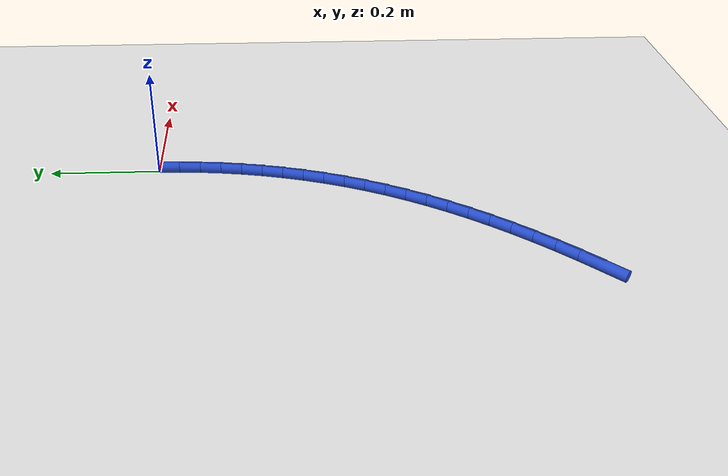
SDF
<sdf version="1.6">
 <world name="default">
  <model name="ground_plane">
   <static>1</static>
   <link name="link">
    <collision name="collision">
     <geometry><plane><normal>0 0 1</normal><size>100 100</size></plane></geometry>
     <surface><friction><ode><mu>100</mu><mu2>50</mu2></ode></friction></surface>
    </collision>
    <visual name="visual">
     <cast_shadows>0</cast_shadows>
     <geometry><plane><normal>0 0 1</normal><size>100 100</size></plane></geometry>
     <material>
      <script><uri>file://media/materials/scripts/gazebo.material</uri><name>Gazebo/WhiteGlow</name></script>
     </material>
    </visual>
   </link>
  </model>
  <model name="line">
   <link name="link_149">
    <pose>-0.3109703209604994 -0.728481050519087 0.01 0 1.57 0.8182340703780865</pose>
    <collision name="collision">
     <geometry><cylinder><radius>0.01</radius><length>0.08</length></cylinder></geometry>
    </collision>
    <visual name="visual">
     <material>
      <script><name>Gazebo/Blue</name><uri>file://media/materials/scripts/gazebo.material</uri></script>
     </material>
     <geometry><cylinder><radius>0.01</radius><length>0.08</length></cylinder></geometry>
    </visual>
   </link>
   <link name="link_150">
    <pose>-0.28398249145700494 -0.6996600278416573 0.01 0 1.57 0.8477722701278031</pose>
    <collision name="collision">
     <geometry><cylinder><radius>0.01</radius><length>0.08</length></cylinder></geometry>
    </collision>
    <visual name="visual">
     <material>
      <script><name>Gazebo/Blue</name><uri>file://media/materials/scripts/gazebo.material</uri></script>
     </material>
     <geometry><cylinder><radius>0.01</radius><length>0.08</length></cylinder></geometry>
    </visual>
   </link>
   <link name="link_151">
    <pose>-0.25794233244260184 -0.6701505067670331 0.01 0 1.57 0.8769073071161102</pose>
    <collision name="collision">
     <geometry><cylinder><radius>0.01</radius><length>0.08</length></cylinder></geometry>
    </collision>
    <visual name="visual">
     <material>
      <script><name>Gazebo/Blue</name><uri>file://media/materials/scripts/gazebo.material</uri></script>
     </material>
     <geometry><cylinder><radius>0.01</radius><length>0.08</length></cylinder></geometry>
    </visual>
   </link>
   <link name="link_152">
    <pose>-0.23288833768777886 -0.6400337435514548 0.01 0 1.57 0.9071541386721638</pose>
    <collision name="collision">
     <geometry><cylinder><radius>0.01</radius><length>0.08</length></cylinder></geometry>
    </collision>
    <visual name="visual">
     <material>
      <script><name>Gazebo/Blue</name><uri>file://media/materials/scripts/gazebo.material</uri></script>
     </material>
     <geometry><cylinder><radius>0.01</radius><length>0.08</length></cylinder></geometry>
    </visual>
   </link>
   <link name="link_153">
    <pose>-0.20886849549883132 -0.6093161634620818 0.01 0 1.57 0.938787729878918</pose>
    <collision name="collision">
     <geometry><cylinder><radius>0.01</radius><length>0.08</length></cylinder></geometry>
    </collision>
    <visual name="visual">
     <material>
      <script><name>Gazebo/Blue</name><uri>file://media/materials/scripts/gazebo.material</uri></script>
     </material>
     <geometry><cylinder><radius>0.01</radius><length>0.08</length></cylinder></geometry>
    </visual>
   </link>
   <link name="link_154">
    <pose>-0.18593245019456547 -0.5779911399374742 0.01 0 1.57 0.9718230118073256</pose>
    <collision name="collision">
     <geometry><cylinder><radius>0.01</radius><length>0.08</length></cylinder></geometry>
    </collision>
    <visual name="visual">
     <material>
      <script><name>Gazebo/Blue</name><uri>file://media/materials/scripts/gazebo.material</uri></script>
     </material>
     <geometry><cylinder><radius>0.01</radius><length>0.08</length></cylinder></geometry>
    </visual>
   </link>
   <link name="link_155">
    <pose>-0.1641298460937861 -0.5460520464161904 0.01 0 1.57 1.006263799603996</pose>
    <collision name="collision">
     <geometry><cylinder><radius>0.01</radius><length>0.08</length></cylinder></geometry>
    </collision>
    <visual name="visual">
     <material>
      <script><name>Gazebo/Blue</name><uri>file://media/materials/scripts/gazebo.material</uri></script>
     </material>
     <geometry><cylinder><radius>0.01</radius><length>0.08</length></cylinder></geometry>
    </visual>
   </link>
   <link name="link_156">
    <pose>-0.14351032751529857 -0.5134922563367891 0.01 0 1.57 1.0421007141684497</pose>
    <collision name="collision">
     <geometry><cylinder><radius>0.01</radius><length>0.08</length></cylinder></geometry>
    </collision>
    <visual name="visual">
     <material>
      <script><name>Gazebo/Blue</name><uri>file://media/materials/scripts/gazebo.material</uri></script>
     </material>
     <geometry><cylinder><radius>0.01</radius><length>0.08</length></cylinder></geometry>
    </visual>
   </link>
   <link name="link_157">
    <pose>-0.12412353877790817 -0.48030514313782946 0.01 0 1.57 1.0793091179729382</pose>
    <collision name="collision">
     <geometry><cylinder><radius>0.01</radius><length>0.08</length></cylinder></geometry>
    </collision>
    <visual name="visual">
     <material>
      <script><name>Gazebo/Blue</name><uri>file://media/materials/scripts/gazebo.material</uri></script>
     </material>
     <geometry><cylinder><radius>0.01</radius><length>0.08</length></cylinder></geometry>
    </visual>
   </link>
   <link name="link_158">
    <pose>-0.1060191242004199 -0.44648408025786956 0.01 0 1.57 1.1178471801344174</pose>
    <collision name="collision">
     <geometry><cylinder><radius>0.01</radius><length>0.08</length></cylinder></geometry>
    </collision>
    <visual name="visual">
     <material>
      <script><name>Gazebo/Blue</name><uri>file://media/materials/scripts/gazebo.material</uri></script>
     </material>
     <geometry><cylinder><radius>0.01</radius><length>0.08</length></cylinder></geometry>
    </visual>
   </link>
   <link name="link_159">
    <pose>-0.08924672810163979 -0.41202244113546976 0.01 0 1.57 1.1576542102651584</pose>
    <collision name="collision">
     <geometry><cylinder><radius>0.01</radius><length>0.08</length></cylinder></geometry>
    </collision>
    <visual name="visual">
     <material>
      <script><name>Gazebo/Blue</name><uri>file://media/materials/scripts/gazebo.material</uri></script>
     </material>
     <geometry><cylinder><radius>0.01</radius><length>0.08</length></cylinder></geometry>
    </visual>
   </link>
   <link name="link_160">
    <pose>-0.07385599480037273 -0.3769135992091882 0.01 0 1.57 1.198594706220063</pose>
    <collision name="collision">
     <geometry><cylinder><radius>0.01</radius><length>0.08</length></cylinder></geometry>
    </collision>
    <visual name="visual">
     <material>
      <script><name>Gazebo/Blue</name><uri>file://media/materials/scripts/gazebo.material</uri></script>
     </material>
     <geometry><cylinder><radius>0.01</radius><length>0.08</length></cylinder></geometry>
    </visual>
   </link>
   <link name="link_161">
    <pose>-0.059895192764616356 -0.34115317937199796 0.01 0 1.57 1.2396406106589095</pose>
    <collision name="collision">
     <geometry><cylinder><radius>0.01</radius><length>0.08</length></cylinder></geometry>
    </collision>
    <visual name="visual">
     <material>
      <script><name>Gazebo/Blue</name><uri>file://media/materials/scripts/gazebo.material</uri></script>
     </material>
     <geometry><cylinder><radius>0.01</radius><length>0.08</length></cylinder></geometry>
    </visual>
   </link>
   <link name="link_162">
    <pose>-0.0473883015822829 -0.3047765530547792 0.01 0 1.57 1.2800164326764134</pose>
    <collision name="collision">
     <geometry><cylinder><radius>0.01</radius><length>0.08</length></cylinder></geometry>
    </collision>
    <visual name="visual">
     <material>
      <script><name>Gazebo/Blue</name><uri>file://media/materials/scripts/gazebo.material</uri></script>
     </material>
     <geometry><cylinder><radius>0.01</radius><length>0.08</length></cylinder></geometry>
    </visual>
   </link>
   <link name="link_163">
    <pose>-0.036338508149658715 -0.26785311703264264 0.01 0 1.57 1.3197810830834114</pose>
    <collision name="collision">
     <geometry><cylinder><radius>0.01</radius><length>0.08</length></cylinder></geometry>
    </collision>
    <visual name="visual">
     <material>
      <script><name>Gazebo/Blue</name><uri>file://media/materials/scripts/gazebo.material</uri></script>
     </material>
     <geometry><cylinder><radius>0.01</radius><length>0.08</length></cylinder></geometry>
    </visual>
   </link>
   <link name="link_164">
    <pose>-0.026748328048730424 -0.2304533666253514 0.01 0 1.57 1.3590238643201957</pose>
    <collision name="collision">
     <geometry><cylinder><radius>0.01</radius><length>0.08</length></cylinder></geometry>
    </collision>
    <visual name="visual">
     <material>
      <script><name>Gazebo/Blue</name><uri>file://media/materials/scripts/gazebo.material</uri></script>
     </material>
     <geometry><cylinder><radius>0.01</radius><length>0.08</length></cylinder></geometry>
    </visual>
   </link>
   <link name="link_165">
    <pose>-0.018620276861484052 -0.19264779715266658 0.01 0 1.57 1.397836859349244</pose>
    <collision name="collision">
     <geometry><cylinder><radius>0.01</radius><length>0.08</length></cylinder></geometry>
    </collision>
    <visual name="visual">
     <material>
      <script><name>Gazebo/Blue</name><uri>file://media/materials/scripts/gazebo.material</uri></script>
     </material>
     <geometry><cylinder><radius>0.01</radius><length>0.08</length></cylinder></geometry>
    </visual>
   </link>
   <link name="link_166">
    <pose>-0.011956870169905874 -0.15450690393434993 0.01 0 1.57 1.4363141953963918</pose>
    <collision name="collision">
     <geometry><cylinder><radius>0.01</radius><length>0.08</length></cylinder></geometry>
    </collision>
    <visual name="visual">
     <material>
      <script><name>Gazebo/Blue</name><uri>file://media/materials/scripts/gazebo.material</uri></script>
     </material>
     <geometry><cylinder><radius>0.01</radius><length>0.08</length></cylinder></geometry>
    </visual>
   </link>
   <link name="link_167">
    <pose>-0.006760623555982129 -0.11610118229016327 0.01 0 1.57 1.474551454508947</pose>
    <collision name="collision">
     <geometry><cylinder><radius>0.01</radius><length>0.08</length></cylinder></geometry>
    </collision>
    <visual name="visual">
     <material>
      <script><name>Gazebo/Blue</name><uri>file://media/materials/scripts/gazebo.material</uri></script>
     </material>
     <geometry><cylinder><radius>0.01</radius><length>0.08</length></cylinder></geometry>
    </visual>
   </link>
   <link name="link_168">
    <pose>-0.003034052601699015 -0.07750112753986763 0.01 0 1.57 1.5126451986391012</pose>
    <collision name="collision">
     <geometry><cylinder><radius>0.01</radius><length>0.08</length></cylinder></geometry>
    </collision>
    <visual name="visual">
     <material>
      <script><name>Gazebo/Blue</name><uri>file://media/materials/scripts/gazebo.material</uri></script>
     </material>
     <geometry><cylinder><radius>0.01</radius><length>0.08</length></cylinder></geometry>
    </visual>
   </link>
   <link name="link_169">
    <pose>-0.0007796728890429195 -0.038777235003226225 0.01 0 1.57 1.5506925765297</pose>
    <collision name="collision">
     <geometry><cylinder><radius>0.01</radius><length>0.08</length></cylinder></geometry>
    </collision>
    <visual name="visual">
     <material>
      <script><name>Gazebo/Blue</name><uri>file://media/materials/scripts/gazebo.material</uri></script>
     </material>
     <geometry><cylinder><radius>0.01</radius><length>0.08</length></cylinder></geometry>
    </visual>
   </link>
  </model>
 </world>
</sdf>
